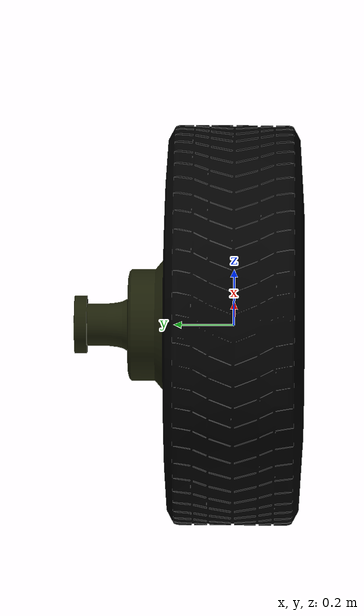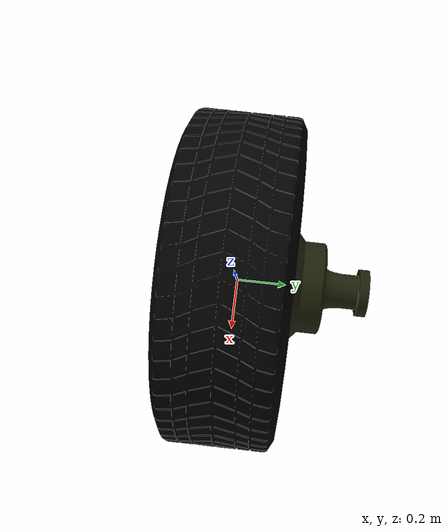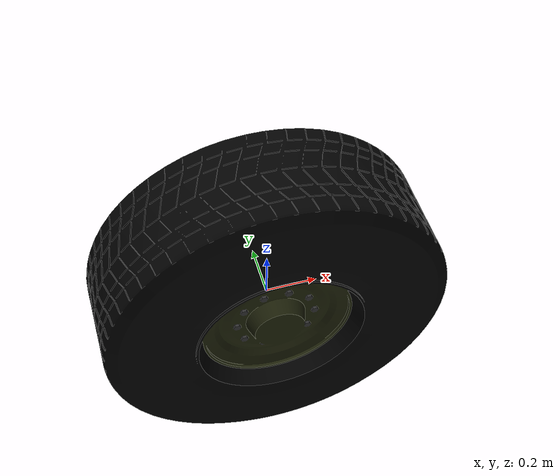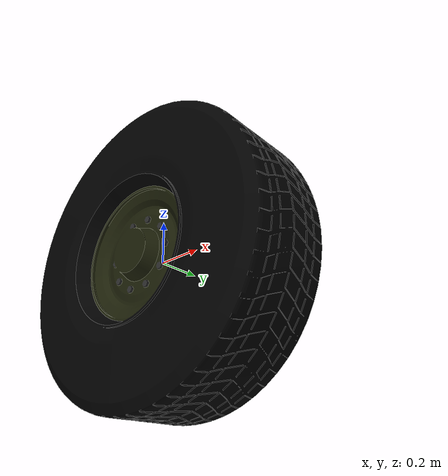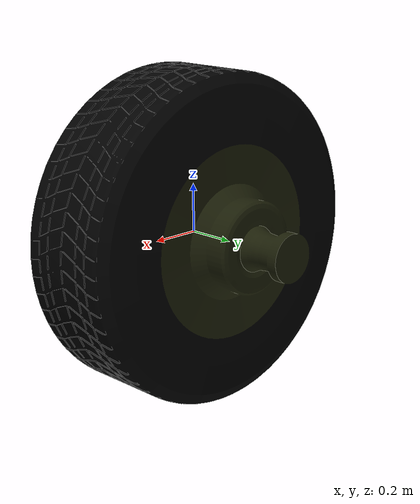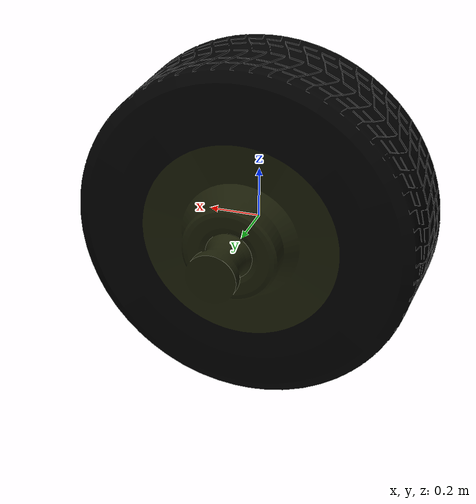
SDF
<?xml version="1.0" encoding="UTF-8"?>
<!-- -*- mode: XML -*- -->
<sdf version='1.4'>
<model name="oshkosh_wheel" >

<link name='wheel'>
<self_collide>0</self_collide>
	<pose>0 0 0 0 0 0</pose>
	<inertial>
		<pose>0 0 0 0 0 0</pose>
		<mass>80</mass>
		<inertia>
			<ixx>7.34</ixx>
			<ixy>0</ixy>
			<ixz>0</ixz>
			<iyy>12.6</iyy>
			<iyz>0</iyz>
			<izz>7.34</izz>
		</inertia>
	</inertial>
	<collision name='wheel_1_col'>
		<pose>0 0 0 1.57079633 0 0</pose>
		<geometry>
			<cylinder>
				<length>0.08</length>
				<radius>0.6715</radius>
			</cylinder>
		</geometry>
		<surface>
        <friction>
          <ode>
            <mu>0.30</mu>
            <mu2>0.30</mu2>
          </ode>
        </friction>
      </surface>
	</collision>
	<collision name='wheel_col'>
		<pose>0 0 0 1.57079633 0 0</pose>
		<geometry>
			<cylinder>
				<length>0.12</length>
				<radius>0.67</radius>
			</cylinder>
		</geometry>
	</collision>
	<collision name='wheel_col2'>
		<pose>0 0 0 1.57079633 0 0</pose>
		<geometry>
			<cylinder>
				<length>0.3</length>
				<radius>0.665</radius>
			</cylinder>
		</geometry>
	</collision>
	<collision name='wheel_col3'>
		<pose>0 0 0 1.57079633 0 0</pose>
		<geometry>
			<cylinder>
				<length>0.44</length>
				<radius>0.65</radius>
			</cylinder>
		</geometry>
	</collision>
	<visual name='wheel_vis'>
		<pose>0 0 0 0 0 0</pose>
		<geometry>
			<mesh>
				<uri>model://../Assets/Oshkosh/Oshkosh_Wheel.dae</uri>
			</mesh>
		</geometry>
	</visual>
	<gravity>1</gravity>
	<self_collide>0</self_collide>
</link>

</model>
</sdf>
